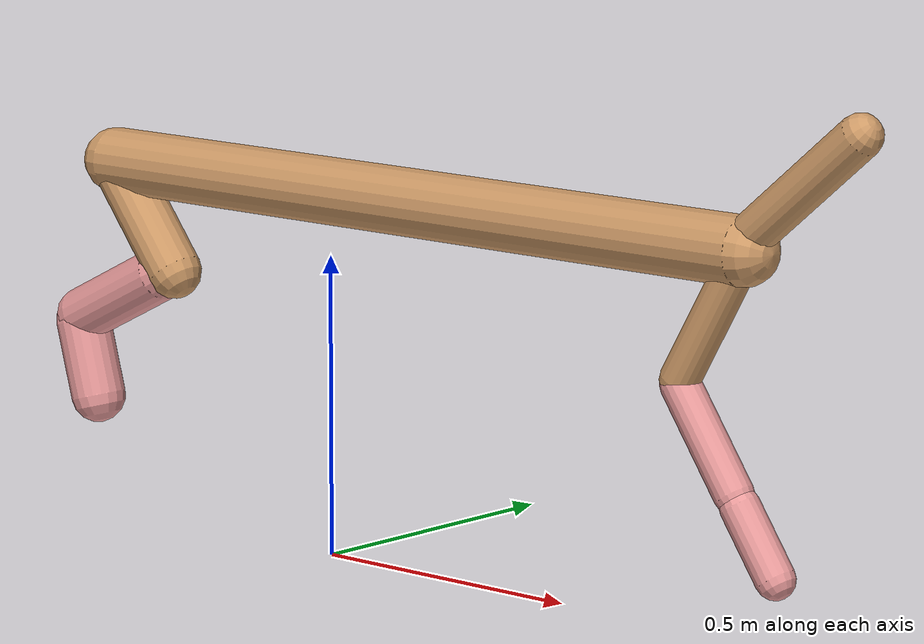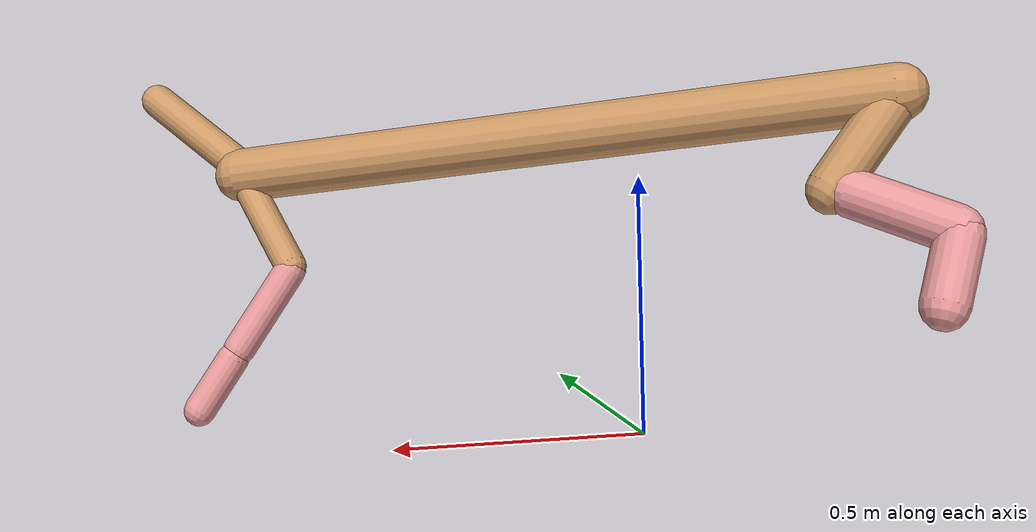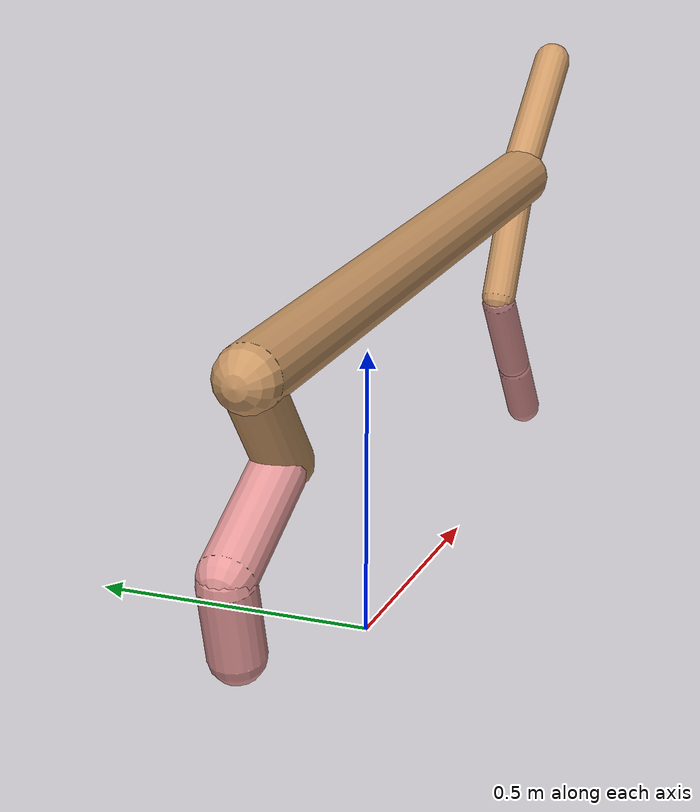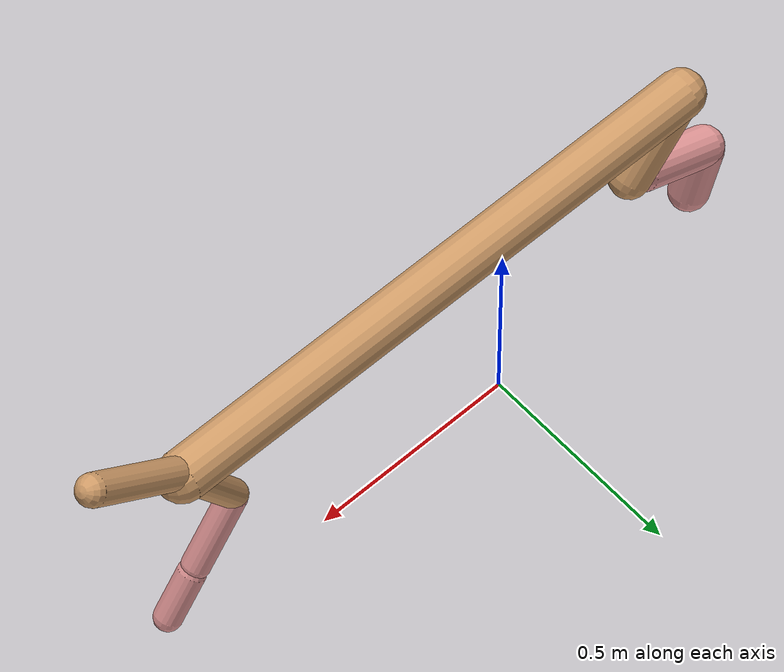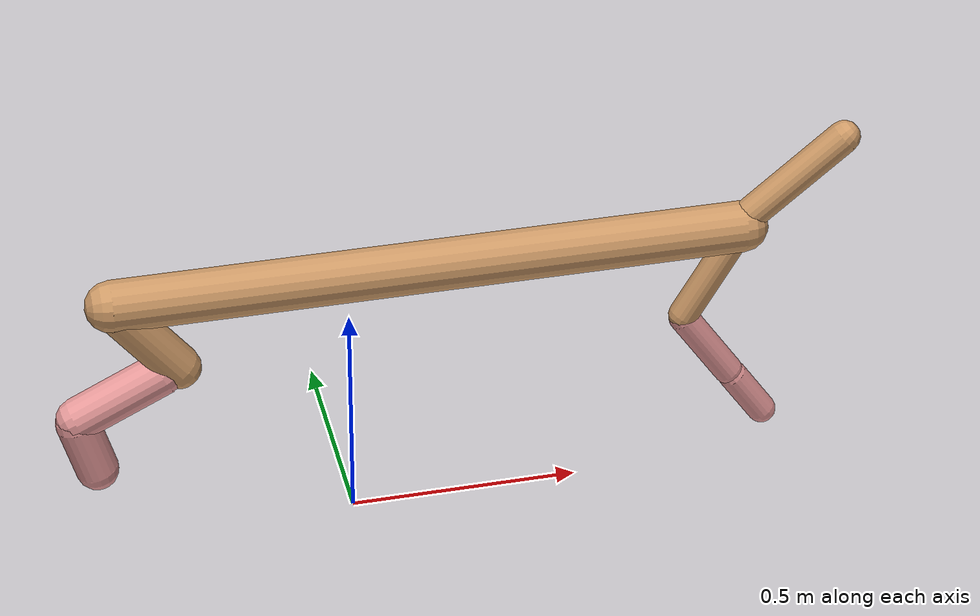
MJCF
<mujoco model="cheetah">
  <compiler angle="radian" coordinate="local" inertiafromgeom="true" settotalmass="14" />
  <default>
    <joint armature=".1" damping=".01" limited="true" solimplimit="0 .8 .03" solreflimit=".02 1" stiffness="8" />
    <geom conaffinity="0" condim="3" contype="1" friction="0.8 .1 .1" rgba="0.8 0.6 .4 1" solimp="0.0 0.8 0.01" solref="0.02 1" />
    <motor ctrllimited="true" ctrlrange="-1 1" />
  </default>
  <size nstack="300000" nuser_geom="1" />
  <option gravity="0 0 -9.81" timestep="0.01" />
  <worldbody>
    <body name="torso" pos="0.0 0.0 0.6070903048248422">
      <joint armature="0" axis="1 0 0" damping="0" limited="false" name="ignorex" pos="0 0 0" stiffness="0" type="slide" />
      <joint armature="0" axis="0 0 1" damping="0" limited="false" name="ignorez" pos="0 0 0" stiffness="0" type="slide" />
      <joint armature="0" axis="0 1 0" damping="0" limited="false" name="ignorey" pos="0 0 0" stiffness="0" type="hinge" />
      <geom fromto="-0.5 0.0 0.0 0.8589557452538582 0.0 0.0" name="torso" size="0.055395300459474515" type="capsule" />
      <geom axisangle="0 1 0 .87" name="head" pos="0.9589557452538581 0.0 0.1" size="0.035311292813604025 0.15" type="capsule" />

      <body name="bthigh" pos="-.5 0 0">
        <joint axis="0 1 0" damping="6" name="bthigh" pos="0 0 0" range="-.52 1.05" stiffness="240" type="hinge" />
        <geom axisangle="0 1 0 -3.8" name="bthigh" pos="0.0734775819030384 0.0 -0.0955208564739499" size="0.04672899537871845 0.10149999999999999" type="capsule" />
        <body name="bshin" pos="0.10695516380607678 0.0 -0.18104171294789978">
          <joint axis="0 1 0" damping="4.5" name="bshin" pos="0 0 0" range="-.785 .785" stiffness="180" type="hinge" />
          <geom axisangle="0 1 0 -2.03" name="bshin" pos="-0.0997507764050038 0.0 -0.0498753882025019" rgba="0.9 0.6 0.6 1" size="0.04672899537871845 0.105" type="capsule" />
          <body name="bfoot" pos="-0.1995015528100076 0.0 -0.0997507764050038">
            <joint axis="0 1 0" damping="3" name="bfoot" pos="0 0 0" range="-.4 .785" stiffness="120" type="hinge" />
            <geom axisangle="0 1 0 -.27" name="bfoot" pos="0.021667753813597694 0.0 -0.07005907066396588" rgba="0.9 0.6 0.6 1" size="0.04672899537871845 0.0658" type="capsule" />
            <inertial mass="10" />
          </body>
        </body>
      </body>
      <body name="fthigh" pos="0.8589557452538581 0.0 0.0">
        <joint axis="0 1 0" damping="4.5" name="fthigh" pos="0 0 0" range="-1.5 0.8" stiffness="180" type="hinge" />
        <geom axisangle="0 1 0 .52" name="fthigh" pos="-0.06348710360801055 0.0 -0.1088350347565895" size="0.0322 0.12007427880931382" type="capsule" />
        <body name="fshin" pos="-0.1269742072160211 0.0 -0.217670069513179">
          <joint axis="0 1 0" damping="3" name="fshin" pos="0 0 0" range="-1.2 1.1" stiffness="120" type="hinge" />
          <geom axisangle="0 1 0 -.6" name="fshin" pos="0.058968450437369195 0.0 -0.08164862368251119" rgba="0.9 0.6 0.6 1" size="0.0322 0.09569829739689673" type="capsule" />
          <body name="ffoot" pos="0.11793690087473839 0.0 -0.16329724736502238">
            <joint axis="0 1 0" damping="1.5" name="ffoot" pos="0 0 0" range="-3.1 -0.3" stiffness="60" type="hinge" />
            <geom axisangle="0 1 0 -.6" name="ffoot" pos="0.04132122007522878 0.0 -0.06427745345035589" rgba="0.9 0.6 0.6 1" size="0.0322 0.06319698884700728" type="capsule" />
            <inertial mass="10" />
          </body>
        </body>
      </body>
    </body>
  </worldbody>
  <actuator>
    <motor gear="120" joint="bthigh" name="bthigh" />
    <motor gear="90" joint="bshin" name="bshin" />
    <motor gear="60" joint="bfoot" name="bfoot" />
    <motor gear="120" joint="fthigh" name="fthigh" />
    <motor gear="60" joint="fshin" name="fshin" />
    <motor gear="30" joint="ffoot" name="ffoot" />
  </actuator>
</mujoco>
